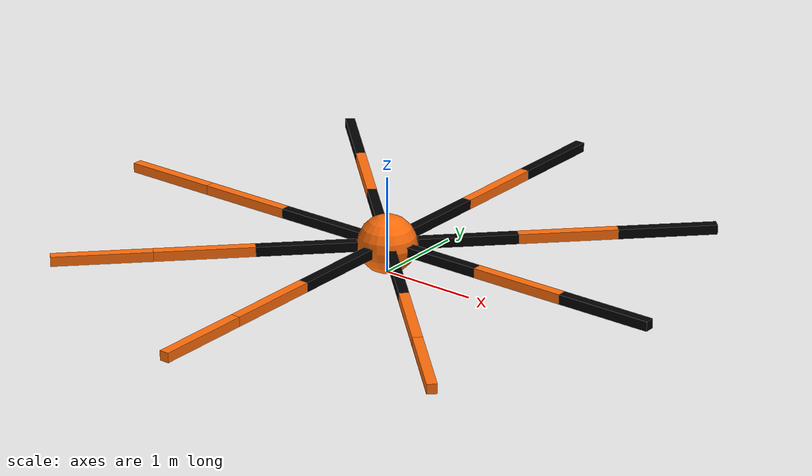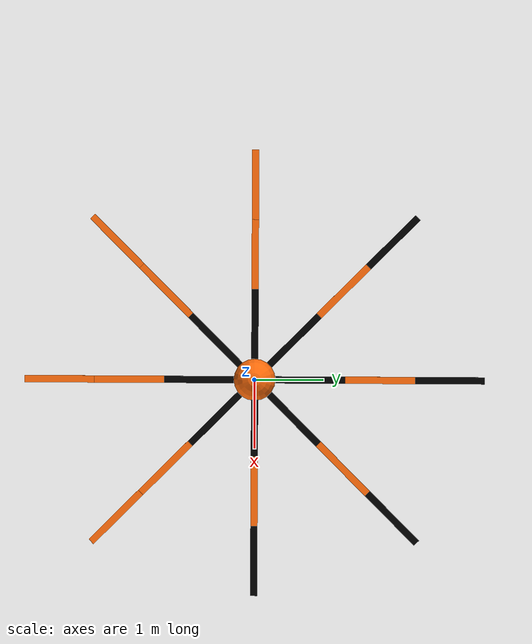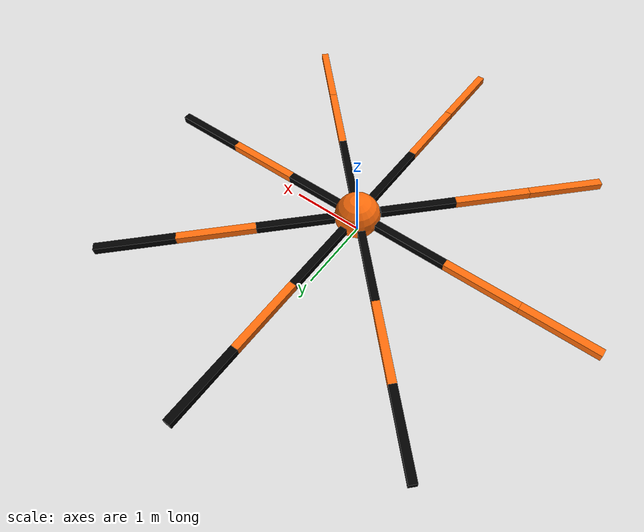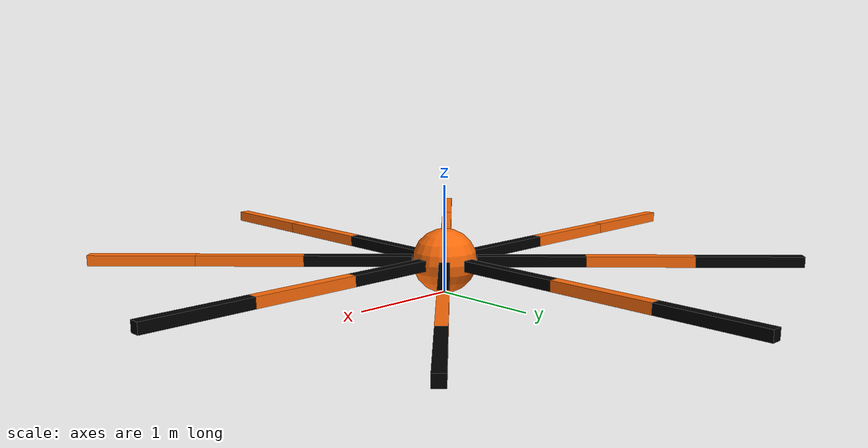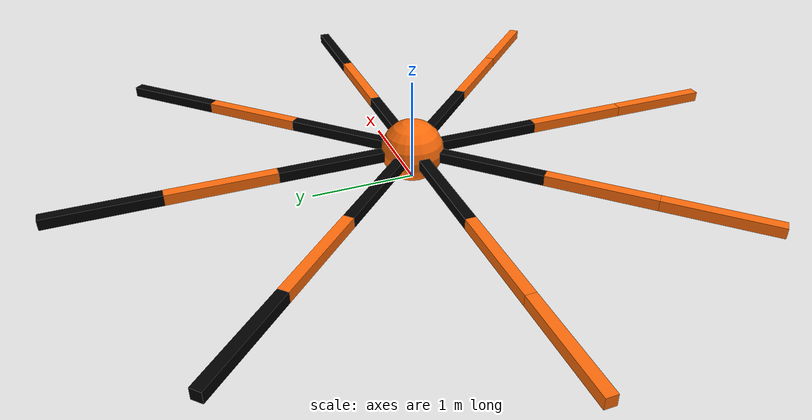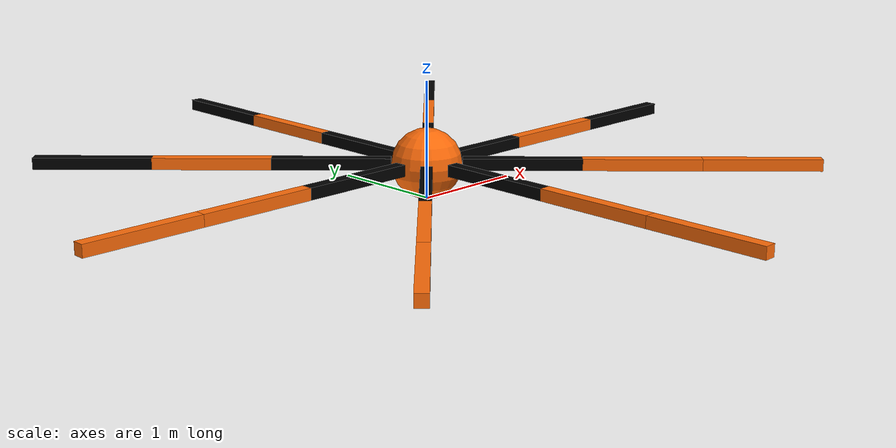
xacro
<?xml version="1.0"?>
<!-- Revolute-Revolute Manipulator -->
<robot name="spider_bot" xmlns:xacro="http://www.ros.org/wiki/xacro">

  <!-- Constants for robot dimensions -->
  <xacro:property name="PI" value="3.1415926535897931"/>
  <xacro:property name="mass_body" value="3" /> <!-- arbitrary value for mass of body-->
  <xacro:property name="mass_links" value="0.2" /> <!-- arbitrary value for mass of links-->
  <xacro:property name="radius" value="0.3" /> <!-- arbitrary value for radius of body-->
  <xacro:property name="axel_offset" value="0.00" /> <!-- space between top of beam and each joint-->
  <xacro:property name="width" value="0.1" /> <!-- arbitrary value for width of each link-->
  <xacro:property name="length" value="1" /> <!-- arbitrary value for length of each link-->

  <!-- Import all Gazebo-customization elements, including Gazebo colors -->
  <!--xacro:include filename="$(find rrbot_description)/urdf/rrbot.gazebo" /-->
  <!-- Import Rviz colors -->
  <!--xacro:include filename="$(find rrbot_description)/urdf/materials.xacro" /-->
  <gazebo>
    <plugin name="gazebo_ros_control" filename="libgazebo_ros_control.so">
       <robotSimType>gazebo_ros_control/DefaultRobotHWSim</robotSimType>
    </plugin>
  </gazebo>

  <material name="black">
    <color rgba="0.0 0.0 0.0 1.0"/>
  </material>
  <material name="orange">
    <color rgba="${255/255} ${108/255} ${10/255} 1.0"/>
  </material>

  <gazebo reference="body">
    <material>Gazebo/Orange</material>
  </gazebo>
  <gazebo reference="phi_link">
    <material>Gazebo/Red</material>
  </gazebo>
  <gazebo reference="arm_1_link_1">
    <material>Gazebo/Black</material>
  </gazebo>
  <gazebo reference="arm_1_link_2">
    <material>Gazebo/Orange</material>
  </gazebo>
  <gazebo reference="arm_1_link_3">
    <material>Gazebo/Black</material>
  </gazebo>
  <gazebo reference="arm_2_link_1">
    <material>Gazebo/Black</material>
  </gazebo>
  <gazebo reference="arm_2_link_2">
    <material>Gazebo/Orange</material>
  </gazebo>
  <gazebo reference="arm_2_link_3">
    <material>Gazebo/Black</material>
  </gazebo>
  <gazebo reference="arm_3_link_1">
    <material>Gazebo/Black</material>
  </gazebo>
  <gazebo reference="arm_3_link_2">
    <material>Gazebo/Orange</material>
  </gazebo>
  <gazebo reference="arm_3_link_3">
    <material>Gazebo/Black</material>
  </gazebo>
  <gazebo reference="arm_4_link_1">
    <material>Gazebo/Black</material>
  </gazebo>
  <gazebo reference="arm_4_link_2">
    <material>Gazebo/Orange</material>
  </gazebo>
  <gazebo reference="arm_4_link_3">
    <material>Gazebo/Black</material>
  </gazebo>
  <gazebo reference="arm_5_link_1">
    <material>Gazebo/Black</material>
  </gazebo>
  <gazebo reference="arm_5_link_2">
    <material>Gazebo/Orange</material>
  </gazebo>
  <gazebo reference="arm_5_link_3">
    <material>Gazebo/Black</material>
  </gazebo>
  <gazebo reference="arm_6_link_1">
    <material>Gazebo/Black</material>
  </gazebo>
  <gazebo reference="arm_6_link_2">
    <material>Gazebo/Orange</material>
  </gazebo>
  <gazebo reference="arm_6_link_3">
    <material>Gazebo/Black</material>
  </gazebo>
  <gazebo reference="arm_7_link_1">
    <material>Gazebo/Black</material>
  </gazebo>
  <gazebo reference="arm_7_link_2">
    <material>Gazebo/Orange</material>
  </gazebo>
  <gazebo reference="arm_7_link_3">
    <material>Gazebo/Black</material>
  </gazebo>
  <gazebo reference="arm_8_link_1">
    <material>Gazebo/Black</material>
  </gazebo>
  <gazebo reference="arm_8_link_2">
    <material>Gazebo/Orange</material>
  </gazebo>
  <gazebo reference="arm_8_link_3">
    <material>Gazebo/Black</material>
  </gazebo>

  <!-- World to body joint -->

  <!-- Body Link -->
  <link name="dummy">
   </link>
  <link name="body">

    <collision>
      <origin xyz="0 0 0" rpy="0 0 0"/>
      <geometry>
	<sphere radius = "${radius}"/>
      </geometry>
    </collision>

    <visual>
      <origin xyz="0 0 0" rpy="0 0 0"/>
      <geometry>
	<sphere radius = "${radius}"/>
      </geometry>
      <material name="orange"/>
    </visual>

    <inertial>
      <origin xyz="0 0 0" rpy="0 0 0"/>
      <mass value="${mass_body}"/>
      <inertia
	  ixx="${((2/5)*mass_body)*(radius*radius)}" ixy="0.0" ixz="0.0"
	  iyy="${((2/5)*mass_body)*(radius*radius)}" iyz="0.0"
	  izz="${((2/5)*mass_body)*(radius*radius)}"/>
    </inertial>
  </link>
  <joint name="dummy_joint" type="fixed">
     <parent link="dummy"/>
     <child link="body"/>
     <origin xyz="0 0 ${radius}" rpy="0 0 0"/>
  </joint>

  <joint name="joint1" type="continuous">
    <parent link="body"/>
    <child link="arm_1_link_1"/>
    <origin xyz="${width} 0 0" rpy="0 0 0"/>
    <axis xyz="0 1 0"/>
    <dynamics damping="0.7"/>
  </joint>

  <!-- Arm 1 Link 1 -->
  <link name="arm_1_link_1">
    <collision>
      <origin xyz="${length/2 - axel_offset} 0 0" rpy="0 0 0"/>
      <geometry>
	<box size="${length} ${width} ${width}"/>
      </geometry>
    </collision>

    <visual>
      <origin xyz="${length/2 - axel_offset} 0 0" rpy="0 0 0"/>
      <geometry>
	<box size="${length} ${width} ${width}"/>
      </geometry>
      <material name="black"/>
    </visual>

    <inertial>
      <origin xyz="${length/2 - axel_offset} 0 0" rpy="0 0 0"/>
      <mass value="${mass_links}"/>
      <inertia
	  ixx="${mass_links / 12.0 * (width*width + width*width)}" ixy="0.0" ixz="0.0"
	  iyy="${mass_links / 12.0 * (length*length + width*width)}" iyz="0.0"
	  izz="${mass_links / 12.0 * (width*width + length*length)}"/>
    </inertial>
  </link>

  <joint name="joint2" type="continuous">
    <parent link="arm_1_link_1"/>
    <child link="arm_1_link_2"/>
    <origin xyz="${length-axel_offset*2} 0 0" rpy="0 0 0"/>
    <axis xyz="0 1 0"/>
    <dynamics damping="0.7"/>
  </joint>

  <!-- Arm 1 Link 2 -->
  <link name="arm_1_link_2">
    <collision>
      <origin xyz="${length/2 - axel_offset} 0 0" rpy="0 0 0"/>
      <geometry>
	<box size="${length} ${width} ${width}"/>
      </geometry>
    </collision>

    <visual>
      <origin xyz="${length/2 - axel_offset} 0 0" rpy="0 0 0"/>
      <geometry>
	<box size="${length} ${width} ${width}"/>
      </geometry>
      <material name="orange"/>
    </visual>

    <inertial>
      <origin xyz="${length/2 - axel_offset} 0 0" rpy="0 0 0"/>
      <mass value="${mass_links}"/>
      <inertia
	  ixx="${mass_links / 12.0 * (width*width + width*width)}" ixy="0.0" ixz="0.0"
	  iyy="${mass_links / 12.0 * (length*length + width*width)}" iyz="0.0"
	  izz="${mass_links / 12.0 * (width*width + length*length)}"/>
    </inertial>
  </link>

  <joint name="joint3" type="continuous">
    <parent link="arm_1_link_2"/>
    <child link="arm_1_link_3"/>
    <origin xyz="${length-axel_offset*2} 0 0" rpy="0 0 0"/>
    <axis xyz="0 1 0"/>
    <dynamics damping="0.7"/>
  </joint>

  <!-- Arm 1 Link 3 -->
  <link name="arm_1_link_3">
    <collision>
      <origin xyz="${length/2 - axel_offset} 0 0" rpy="0 0 0"/>
      <geometry>
	<box size="${length} ${width} ${width}"/>
      </geometry>
    </collision>

    <visual>
      <origin xyz="${length/2 - axel_offset} 0 0" rpy="0 0 0"/>
      <geometry>
	<box size="${length} ${width} ${width}"/>
      </geometry>
      <material name="black"/>
    </visual>

    <inertial>
      <origin xyz="${length/2 - axel_offset} 0 0" rpy="0 0 0"/>
      <mass value="${mass_links}"/>
      <inertia
	  ixx="${mass_links / 12.0 * (width*width + width*width)}" ixy="0.0" ixz="0.0"
	  iyy="${mass_links / 12.0 * (length*length + width*width)}" iyz="0.0"
	  izz="${mass_links / 12.0 * (width*width + length*length)}"/>
    </inertial>
  </link>

  <joint name="joint4" type="continuous">
    <parent link="body"/>
    <child link="arm_2_link_1"/>
    <origin xyz="${(radius-axel_offset)*0.7071} ${(radius-axel_offset)*0.7071} 0" rpy="0 0 ${PI/4}"/>
    <axis xyz="0 1 0"/>
    <dynamics damping="0.7"/>
  </joint>

  <!-- Arm 2 Link 1 -->
  <link name="arm_2_link_1">
    <collision>
      <origin xyz="${length/2 - axel_offset} 0 0" rpy="0 0 0"/>
      <geometry>
	<box size="${length} ${width} ${width}"/>
      </geometry>
    </collision>

    <visual>
      <origin xyz="${length/2 - axel_offset} 0 0" rpy="0 0 0"/>
      <geometry>
	<box size="${length} ${width} ${width}"/>
      </geometry>
      <material name="black"/>
    </visual>

    <inertial>
      <origin xyz="${length/2 - axel_offset} 0 0" rpy="0 0 0"/>
      <mass value="${mass_links}"/>
      <inertia
	  ixx="${mass_links / 12.0 * (width*width + width*width)}" ixy="0.0" ixz="0.0"
	  iyy="${mass_links / 12.0 * (length*length + width*width)}" iyz="0.0"
	  izz="${mass_links / 12.0 * (width*width + length*length)}"/>
    </inertial>
  </link>

  <joint name="joint5" type="continuous">
    <parent link="arm_2_link_1"/>
    <child link="arm_2_link_2"/>
    <origin xyz="${length-axel_offset*2} 0 0" rpy="0 0 0"/>
    <axis xyz="0 1 0"/>
    <dynamics damping="0.7"/>
  </joint>

  <!-- Arm 2 Link 2 -->
  <link name="arm_2_link_2">
    <collision>
      <origin xyz="${length/2 - axel_offset} 0 0" rpy="0 0 0"/>
      <geometry>
	<box size="${length} ${width} ${width}"/>
      </geometry>
    </collision>

    <visual>
      <origin xyz="${length/2 - axel_offset} 0 0" rpy="0 0 0"/>
      <geometry>
	<box size="${length} ${width} ${width}"/>
      </geometry>
      <material name="orange"/>
    </visual>

    <inertial>
      <origin xyz="${length/2 - axel_offset} 0 0" rpy="0 0 0"/>
      <mass value="${mass_links}"/>
      <inertia
	  ixx="${mass_links / 12.0 * (width*width + width*width)}" ixy="0.0" ixz="0.0"
	  iyy="${mass_links / 12.0 * (length*length + width*width)}" iyz="0.0"
	  izz="${mass_links / 12.0 * (width*width + length*length)}"/>
    </inertial>
  </link>

  <joint name="joint6" type="continuous">
    <parent link="arm_2_link_2"/>
    <child link="arm_2_link_3"/>
    <origin xyz="${length-axel_offset*2} 0 0" rpy="0 0 0"/>
    <axis xyz="0 1 0"/>
    <dynamics damping="0.7"/>
  </joint>

  <!-- Arm 2 Link 3 -->
  <link name="arm_2_link_3">
    <collision>
      <origin xyz="${length/2 - axel_offset} 0 0" rpy="0 0 0"/>
      <geometry>
	<box size="${length} ${width} ${width}"/>
      </geometry>
    </collision>

    <visual>
      <origin xyz="${length/2 - axel_offset} 0 0" rpy="0 0 0"/>
      <geometry>
	<box size="${length} ${width} ${width}"/>
      </geometry>
      <material name="black"/>
    </visual>

    <inertial>
      <origin xyz="${length/2 - axel_offset} 0 0" rpy="0 0 0"/>
      <mass value="${mass_links}"/>
      <inertia
	  ixx="${mass_links / 12.0 * (width*width + width*width)}" ixy="0.0" ixz="0.0"
	  iyy="${mass_links / 12.0 * (length*length + width*width)}" iyz="0.0"
	  izz="${mass_links / 12.0 * (width*width + length*length)}"/>
    </inertial>
  </link>

  <joint name="joint7" type="continuous">
    <parent link="body"/>
    <child link="arm_3_link_1"/>
    <origin xyz="0 ${radius-axel_offset} 0" rpy="0 0 ${PI/2}"/>
    <axis xyz="0 1 0"/>
    <dynamics damping="0.7"/>
  </joint>

  <!-- Arm 3 Link 1 -->
  <link name="arm_3_link_1">
    <collision>
      <origin xyz="${length/2 - axel_offset} 0 0" rpy="0 0 0"/>
      <geometry>
	<box size="${length} ${width} ${width}"/>
      </geometry>
    </collision>

    <visual>
      <origin xyz="${length/2 - axel_offset} 0 0" rpy="0 0 0"/>
      <geometry>
	<box size="${length} ${width} ${width}"/>
      </geometry>
      <material name="black"/>
    </visual>

    <inertial>
      <origin xyz="${length/2 - axel_offset} 0 0" rpy="0 0 0"/>
      <mass value="${mass_links}"/>
      <inertia
	  ixx="${mass_links / 12.0 * (width*width + width*width)}" ixy="0.0" ixz="0.0"
	  iyy="${mass_links / 12.0 * (length*length + width*width)}" iyz="0.0"
	  izz="${mass_links / 12.0 * (width*width + length*length)}"/>
    </inertial>
  </link>

  <joint name="joint8" type="continuous">
    <parent link="arm_3_link_1"/>
    <child link="arm_3_link_2"/>
    <origin xyz="${length-axel_offset*2} 0 0" rpy="0 0 0"/>
    <axis xyz="0 1 0"/>
    <dynamics damping="0.7"/>
  </joint>

  <!-- Arm 3 Link 2 -->
  <link name="arm_3_link_2">
    <collision>
      <origin xyz="${length/2 - axel_offset} 0 0" rpy="0 0 0"/>
      <geometry>
	<box size="${length} ${width} ${width}"/>
      </geometry>
    </collision>

    <visual>
      <origin xyz="${length/2 - axel_offset} 0 0" rpy="0 0 0"/>
      <geometry>
	<box size="${length} ${width} ${width}"/>
      </geometry>
      <material name="orange"/>
    </visual>

    <inertial>
      <origin xyz="${length/2 - axel_offset} 0 0" rpy="0 0 0"/>
      <mass value="${mass_links}"/>
      <inertia
	  ixx="${mass_links / 12.0 * (width*width + width*width)}" ixy="0.0" ixz="0.0"
	  iyy="${mass_links / 12.0 * (length*length + width*width)}" iyz="0.0"
	  izz="${mass_links / 12.0 * (width*width + length*length)}"/>
    </inertial>
  </link>

  <joint name="joint9" type="continuous">
    <parent link="arm_3_link_2"/>
    <child link="arm_3_link_3"/>
    <origin xyz="${length - axel_offset*2} 0 0" rpy="0 0 0"/>
    <axis xyz="0 1 0"/>
    <dynamics damping="0.7"/>
  </joint>

  <!-- Arm 3 Link 3 -->
  <link name="arm_3_link_3">
    <collision>
      <origin xyz="${length/2 - axel_offset} 0 0" rpy="0 0 0"/>
      <geometry>
	<box size="${length} ${width} ${width}"/>
      </geometry>
    </collision>

    <visual>
      <origin xyz="${length/2 - axel_offset} 0 0" rpy="0 0 0"/>
      <geometry>
	<box size="${length} ${width} ${width}"/>
      </geometry>
      <material name="black"/>
    </visual>

    <inertial>
      <origin xyz="${length/2 - axel_offset} 0 0" rpy="0 0 0"/>
      <mass value="${mass_links}"/>
      <inertia
	  ixx="${mass_links / 12.0 * (width*width + width*width)}" ixy="0.0" ixz="0.0"
	  iyy="${mass_links / 12.0 * (length*length + width*width)}" iyz="0.0"
	  izz="${mass_links / 12.0 * (width*width + length*length)}"/>
    </inertial>
  </link>

  <joint name="joint10" type="continuous">
    <parent link="body"/>
    <child link="arm_4_link_1"/>
    <origin xyz="-${(radius-axel_offset)*0.7071} ${(radius-axel_offset)*0.7071} 0" rpy="0 0 ${3*PI/4}"/>
    <axis xyz="0 1 0"/>
    <dynamics damping="0.7"/>
  </joint>

  <!-- Arm 4 Link 1 -->
  <link name="arm_4_link_1">
    <collision>
      <origin xyz="${length/2 - axel_offset} 0 0" rpy="0 0 0"/>
      <geometry>
	<box size="${length} ${width} ${width}"/>
      </geometry>
    </collision>

    <visual>
      <origin xyz="${length/2 - axel_offset} 0 0" rpy="0 0 0"/>
      <geometry>
	<box size="${length} ${width} ${width}"/>
      </geometry>
      <material name="black"/>
    </visual>

    <inertial>
      <origin xyz="${length/2 - axel_offset} 0 0" rpy="0 0 0"/>
      <mass value="${mass_links}"/>
      <inertia
	  ixx="${mass_links / 12.0 * (width*width + width*width)}" ixy="0.0" ixz="0.0"
	  iyy="${mass_links / 12.0 * (length*length + width*width)}" iyz="0.0"
	  izz="${mass_links / 12.0 * (width*width + length*length)}"/>
    </inertial>
  </link>

  <joint name="joint11" type="continuous">
    <parent link="arm_4_link_1"/>
    <child link="arm_4_link_2"/>
    <origin xyz="${length-axel_offset*2} 0 0" rpy="0 0 0"/>
    <axis xyz="0 1 0"/>
    <dynamics damping="0.7"/>
  </joint>

  <!-- Arm 4 Link 2 -->
  <link name="arm_4_link_2">
    <collision>
      <origin xyz="${length/2 - axel_offset} 0 0" rpy="0 0 0"/>
      <geometry>
	<box size="${length} ${width} ${width}"/>
      </geometry>
    </collision>

    <visual>
      <origin xyz="${length/2 - axel_offset} 0 0" rpy="0 0 0"/>
      <geometry>
	<box size="${length} ${width} ${width}"/>
      </geometry>
      <material name="orange"/>
    </visual>

    <inertial>
      <origin xyz="${length/2 - axel_offset} 0 0" rpy="0 0 0"/>
      <mass value="${mass_links}"/>
      <inertia
	  ixx="${mass_links / 12.0 * (width*width + width*width)}" ixy="0.0" ixz="0.0"
	  iyy="${mass_links / 12.0 * (length*length + width*width)}" iyz="0.0"
	  izz="${mass_links / 12.0 * (width*width + length*length)}"/>
    </inertial>
  </link>

  <joint name="joint12" type="continuous">
    <parent link="arm_4_link_2"/>
    <child link="arm_4_link_3"/>
    <origin xyz="${length - axel_offset*2} 0 0" rpy="0 0 0"/>
    <axis xyz="0 1 0"/>
    <dynamics damping="0.7"/>
  </joint>

  <!-- Arm 4 Link 3 -->
  <link name="arm_4_link_3">
    <collision>
      <origin xyz="${length/2 - axel_offset} 0 0" rpy="0 0 0"/>
      <geometry>
	<box size="${length} ${width} ${width}"/>
      </geometry>
    </collision>

    <visual>
      <origin xyz="${length/2 - axel_offset} 0 0" rpy="0 0 0"/>
      <geometry>
	<box size="${length} ${width} ${width}"/>
      </geometry>
      <material name="black"/>
    </visual>

    <inertial>
      <origin xyz="${length/2 - axel_offset} 0 0" rpy="0 0 0"/>
      <mass value="${mass_links}"/>
      <inertia
	  ixx="${mass_links / 12.0 * (width*width + width*width)}" ixy="0.0" ixz="0.0"
	  iyy="${mass_links / 12.0 * (length*length + width*width)}" iyz="0.0"
	  izz="${mass_links / 12.0 * (width*width + length*length)}"/>
    </inertial>
  </link>

  <joint name="joint13" type="continuous">
    <parent link="body"/>
    <child link="arm_5_link_1"/>
    <origin xyz="-${radius-axel_offset} 0 0" rpy="0 0 ${PI}"/>
    <axis xyz="0 1 0"/>
    <dynamics damping="0.7"/>
  </joint>

  <!-- Arm 5 Link 1 -->
  <link name="arm_5_link_1">
    <collision>
      <origin xyz="${length/2 - axel_offset} 0 0" rpy="0 0 0"/>
      <geometry>
	<box size="${length} ${width} ${width}"/>
      </geometry>
    </collision>

    <visual>
      <origin xyz="${length/2 - axel_offset} 0 0" rpy="0 0 0"/>
      <geometry>
	<box size="${length} ${width} ${width}"/>
      </geometry>
      <material name="black"/>
    </visual>

    <inertial>
      <origin xyz="${length/2 - axel_offset} 0 0" rpy="0 0 0"/>
      <mass value="${mass_links}"/>
      <inertia
	  ixx="${mass_links / 12.0 * (width*width + width*width)}" ixy="0.0" ixz="0.0"
	  iyy="${mass_links / 12.0 * (length*length + width*width)}" iyz="0.0"
	  izz="${mass_links / 12.0 * (width*width + length*length)}"/>
    </inertial>
  </link>

  <joint name="joint14" type="continuous">
    <parent link="arm_5_link_1"/>
    <child link="arm_5_link_2"/>
    <origin xyz="${length-axel_offset*2} 0 0" rpy="0 0 0"/>
    <axis xyz="0 1 0"/>
    <dynamics damping="0.7"/>
  </joint>

  <!-- Arm 5 Link 2 -->
  <link name="arm_5_link_2">
    <collision>
      <origin xyz="${length/2 - axel_offset} 0 0" rpy="0 0 0"/>
      <geometry>
	<box size="${length} ${width} ${width}"/>
      </geometry>
    </collision>

    <visual>
      <origin xyz="${length/2 - axel_offset} 0 0" rpy="0 0 0"/>
      <geometry>
	<box size="${length} ${width} ${width}"/>
      </geometry>
      <material name="orange"/>
    </visual>

    <inertial>
      <origin xyz="${length/2 - axel_offset} 0 0" rpy="0 0 0"/>
      <mass value="${mass_links}"/>
      <inertia
	  ixx="${mass_links / 12.0 * (width*width + width*width)}" ixy="0.0" ixz="0.0"
	  iyy="${mass_links / 12.0 * (length*length + width*width)}" iyz="0.0"
	  izz="${mass_links / 12.0 * (width*width + length*length)}"/>
    </inertial>
  </link>

  <joint name="joint15" type="continuous">
    <parent link="arm_5_link_2"/>
    <child link="arm_5_link_3"/>
    <origin xyz="${length-axel_offset*2} 0 0" rpy="0 0 0"/>
    <axis xyz="0 1 0"/>
    <dynamics damping="0.7"/>
  </joint>

  <!-- Arm 5 Link 3 -->
  <link name="arm_5_link_3">
    <collision>
      <origin xyz="${length/2 - axel_offset} 0 0" rpy="0 0 0"/>
      <geometry>
	<box size="${length} ${width} ${width}"/>
      </geometry>
    </collision>

    <visual>
      <origin xyz="${length/2 - axel_offset} 0 0" rpy="0 0 0"/>
      <geometry>
	<box size="${length} ${width} ${width}"/>
      </geometry>
      <material name="orange"/>
    </visual>

    <inertial>
      <origin xyz="${length/2 - axel_offset} 0 0" rpy="0 0 0"/>
      <mass value="${mass_links}"/>
      <inertia
	  ixx="${mass_links / 12.0 * (width*width + width*width)}" ixy="0.0" ixz="0.0"
	  iyy="${mass_links / 12.0 * (length*length + width*width)}" iyz="0.0"
	  izz="${mass_links / 12.0 * (width*width + length*length)}"/>
    </inertial>
  </link>

  <joint name="joint16" type="continuous">
    <parent link="body"/>
    <child link="arm_6_link_1"/>
    <origin xyz="-${(radius-axel_offset)*0.7071} -${(radius-axel_offset)*0.7071}  0" rpy="0 0 ${5*PI/4}"/>
    <axis xyz="0 1 0"/>
    <dynamics damping="0.7"/>
  </joint>

  <!-- Arm 6 Link 1 -->
  <link name="arm_6_link_1">
    <collision>
      <origin xyz="${length/2 - axel_offset} 0 0" rpy="0 0 0"/>
      <geometry>
	<box size="${length} ${width} ${width}"/>
      </geometry>
    </collision>

    <visual>
      <origin xyz="${length/2 - axel_offset} 0 0" rpy="0 0 0"/>
      <geometry>
	<box size="${length} ${width} ${width}"/>
      </geometry>
      <material name="black"/>
    </visual>

    <inertial>
      <origin xyz="${length/2 - axel_offset} 0 0" rpy="0 0 0"/>
      <mass value="${mass_links}"/>
      <inertia
	  ixx="${mass_links / 12.0 * (width*width + width*width)}" ixy="0.0" ixz="0.0"
	  iyy="${mass_links / 12.0 * (length*length + width*width)}" iyz="0.0"
	  izz="${mass_links / 12.0 * (width*width + length*length)}"/>
    </inertial>
  </link>

  <joint name="joint17" type="continuous">
    <parent link="arm_6_link_1"/>
    <child link="arm_6_link_2"/>
    <origin xyz="${length-axel_offset*2} 0 0" rpy="0 0 0"/>
    <axis xyz="0 1 0"/>
    <dynamics damping="0.7"/>
  </joint>

  <!-- Arm 6 Link 2 -->
  <link name="arm_6_link_2">
    <collision>
      <origin xyz="${length/2 - axel_offset} 0 0" rpy="0 0 0"/>
      <geometry>
	<box size="${length} ${width} ${width}"/>
      </geometry>
    </collision>

    <visual>
      <origin xyz="${length/2 - axel_offset} 0 0" rpy="0 0 0"/>
      <geometry>
	<box size="${length} ${width} ${width}"/>
      </geometry>
      <material name="orange"/>
    </visual>

    <inertial>
      <origin xyz="${length/2 - axel_offset} 0 0" rpy="0 0 0"/>
      <mass value="${mass_links}"/>
      <inertia
	  ixx="${mass_links / 12.0 * (width*width + width*width)}" ixy="0.0" ixz="0.0"
	  iyy="${mass_links / 12.0 * (length*length + width*width)}" iyz="0.0"
	  izz="${mass_links / 12.0 * (width*width + length*length)}"/>
    </inertial>
  </link>

  <joint name="joint18" type="continuous">
    <parent link="arm_6_link_2"/>
    <child link="arm_6_link_3"/>
    <origin xyz="${length-axel_offset*2} 0 0" rpy="0 0 0"/>
    <axis xyz="0 1 0"/>
    <dynamics damping="0.7"/>
  </joint>

  <!-- Arm 6 Link 3 -->
  <link name="arm_6_link_3">
    <collision>
      <origin xyz="${length/2 - axel_offset} 0 0" rpy="0 0 0"/>
      <geometry>
	<box size="${length} ${width} ${width}"/>
      </geometry>
    </collision>

    <visual>
      <origin xyz="${length/2 - axel_offset} 0 0" rpy="0 0 0"/>
      <geometry>
	<box size="${length} ${width} ${width}"/>
      </geometry>
      <material name="orange"/>
    </visual>

    <inertial>
      <origin xyz="${length/2 - axel_offset} 0 0" rpy="0 0 0"/>
      <mass value="${mass_links}"/>
      <inertia
	  ixx="${mass_links / 12.0 * (width*width + width*width)}" ixy="0.0" ixz="0.0"
	  iyy="${mass_links / 12.0 * (length*length + width*width)}" iyz="0.0"
	  izz="${mass_links / 12.0 * (width*width + length*length)}"/>
    </inertial>
  </link>

  <joint name="joint19" type="continuous">
    <parent link="body"/>
    <child link="arm_7_link_1"/>
    <origin xyz="0 -${radius-axel_offset} 0" rpy="0 0 ${3*PI/2}"/>
    <axis xyz="0 1 0"/>
    <dynamics damping="0.7"/>
  </joint>

  <!-- Arm 7 Link 1 -->
  <link name="arm_7_link_1">
    <collision>
      <origin xyz="${length/2 - axel_offset} 0 0" rpy="0 0 0"/>
      <geometry>
	<box size="${length} ${width} ${width}"/>
      </geometry>
    </collision>

    <visual>
      <origin xyz="${length/2 - axel_offset} 0 0" rpy="0 0 0"/>
      <geometry>
	<box size="${length} ${width} ${width}"/>
      </geometry>
      <material name="black"/>
    </visual>

    <inertial>
      <origin xyz="${length/2 - axel_offset} 0 0" rpy="0 0 0"/>
      <mass value="${mass_links}"/>
      <inertia
	  ixx="${mass_links / 12.0 * (width*width + width*width)}" ixy="0.0" ixz="0.0"
	  iyy="${mass_links / 12.0 * (length*length + width*width)}" iyz="0.0"
	  izz="${mass_links / 12.0 * (width*width + length*length)}"/>
    </inertial>
  </link>

  <joint name="joint20" type="continuous">
    <parent link="arm_7_link_1"/>
    <child link="arm_7_link_2"/>
    <origin xyz="${length-axel_offset*2} 0 0" rpy="0 0 0"/>
    <axis xyz="0 1 0"/>
    <dynamics damping="0.7"/>
  </joint>

  <!-- Arm 7 Link 2 -->
  <link name="arm_7_link_2">
    <collision>
      <origin xyz="${length/2 - axel_offset} 0 0" rpy="0 0 0"/>
      <geometry>
	<box size="${length} ${width} ${width}"/>
      </geometry>
    </collision>

    <visual>
      <origin xyz="${length/2 - axel_offset} 0 0" rpy="0 0 0"/>
      <geometry>
	<box size="${length} ${width} ${width}"/>
      </geometry>
      <material name="orange"/>
    </visual>

    <inertial>
      <origin xyz="${length/2 - axel_offset} 0 0" rpy="0 0 0"/>
      <mass value="${mass_links}"/>
      <inertia
	  ixx="${mass_links / 12.0 * (width*width + width*width)}" ixy="0.0" ixz="0.0"
	  iyy="${mass_links / 12.0 * (length*length + width*width)}" iyz="0.0"
	  izz="${mass_links / 12.0 * (width*width + length*length)}"/>
    </inertial>
  </link>

  <joint name="joint21" type="continuous">
    <parent link="arm_7_link_2"/>
    <child link="arm_7_link_3"/>
    <origin xyz="${length-axel_offset*2} 0 0" rpy="0 0 0"/>
    <axis xyz="0 1 0"/>
    <dynamics damping="0.7"/>
  </joint>

  <!-- Arm 7 Link 3 -->
  <link name="arm_7_link_3">
    <collision>
      <origin xyz="${length/2 - axel_offset} 0 0" rpy="0 0 0"/>
      <geometry>
	<box size="${length} ${width} ${width}"/>
      </geometry>
    </collision>

    <visual>
      <origin xyz="${length/2 - axel_offset} 0 0" rpy="0 0 0"/>
      <geometry>
	<box size="${length} ${width} ${width}"/>
      </geometry>
      <material name="orange"/>
    </visual>

    <inertial>
      <origin xyz="${length/2 - axel_offset} 0 0" rpy="0 0 0"/>
      <mass value="${mass_links}"/>
      <inertia
	  ixx="${mass_links / 12.0 * (width*width + width*width)}" ixy="0.0" ixz="0.0"
	  iyy="${mass_links / 12.0 * (length*length + width*width)}" iyz="0.0"
	  izz="${mass_links / 12.0 * (width*width + length*length)}"/>
    </inertial>
  </link>

  <joint name="joint22" type="continuous">
    <parent link="body"/>
    <child link="arm_8_link_1"/>
    <origin xyz="${(radius-axel_offset)*0.7071} -${(radius-axel_offset)*0.7071}  0" rpy="0 0 ${7*PI/4}"/>
    <axis xyz="0 1 0"/>
    <dynamics damping="0.7"/>
  </joint>

  <!-- Arm 8 Link 1 -->
  <link name="arm_8_link_1">
    <collision>
      <origin xyz="${length/2 - axel_offset} 0 0" rpy="0 0 0"/>
      <geometry>
	<box size="${length} ${width} ${width}"/>
      </geometry>
    </collision>

    <visual>
      <origin xyz="${length/2 - axel_offset} 0 0" rpy="0 0 0"/>
      <geometry>
	<box size="${length} ${width} ${width}"/>
      </geometry>
      <material name="black"/>
    </visual>

    <inertial>
      <origin xyz="${length/2 - axel_offset} 0 0" rpy="0 0 0"/>
      <mass value="${mass_links}"/>
      <inertia
	  ixx="${mass_links / 12.0 * (width*width + width*width)}" ixy="0.0" ixz="0.0"
	  iyy="${mass_links / 12.0 * (length*length + width*width)}" iyz="0.0"
	  izz="${mass_links / 12.0 * (width*width + length*length)}"/>
    </inertial>
  </link>

  <joint name="joint23" type="continuous">
    <parent link="arm_8_link_1"/>
    <child link="arm_8_link_2"/>
    <origin xyz="${length-axel_offset*2} 0 0" rpy="0 0 0"/>
    <axis xyz="0 1 0"/>
    <dynamics damping="0.7"/>
  </joint>

  <!-- Arm 8 Link 2 -->
  <link name="arm_8_link_2">
    <collision>
      <origin xyz="${length/2 - axel_offset} 0 0" rpy="0 0 0"/>
      <geometry>
	<box size="${length} ${width} ${width}"/>
      </geometry>
    </collision>

    <visual>
      <origin xyz="${length/2 - axel_offset} 0 0" rpy="0 0 0"/>
      <geometry>
	<box size="${length} ${width} ${width}"/>
      </geometry>
      <material name="orange"/>
    </visual>

    <inertial>
      <origin xyz="${length/2 - axel_offset} 0 0" rpy="0 0 0"/>
      <mass value="${mass_links}"/>
      <inertia
	  ixx="${mass_links / 12.0 * (width*width + width*width)}" ixy="0.0" ixz="0.0"
	  iyy="${mass_links / 12.0 * (length*length + width*width)}" iyz="0.0"
	  izz="${mass_links / 12.0 * (width*width + length*length)}"/>
    </inertial>
  </link>

  <joint name="joint24" type="continuous">
    <parent link="arm_8_link_2"/>
    <child link="arm_8_link_3"/>
    <origin xyz="${length-axel_offset*2} 0 0" rpy="0 0 0"/>
    <axis xyz="0 1 0"/>
    <dynamics damping="0.7"/>
  </joint>

  <!-- Arm 8 Link 3 -->
  <link name="arm_8_link_3">
    <collision>
      <origin xyz="${length/2 - axel_offset} 0 0" rpy="0 0 0"/>
      <geometry>
	<box size="${length} ${width} ${width}"/>
      </geometry>
    </collision>

    <visual>
      <origin xyz="${length/2 - axel_offset} 0 0" rpy="0 0 0"/>
      <geometry>
	<box size="${length} ${width} ${width}"/>
      </geometry>
      <material name="orange"/>
    </visual>

    <inertial>
      <origin xyz="${length/2 - axel_offset} 0 0" rpy="0 0 0"/>
      <mass value="${mass_links}"/>
      <inertia
	  ixx="${mass_links / 12.0 * (width*width + width*width)}" ixy="0.0" ixz="0.0"
	  iyy="${mass_links / 12.0 * (length*length + width*width)}" iyz="0.0"
	  izz="${mass_links / 12.0 * (width*width + length*length)}"/>
    </inertial>
  </link>

  <transmission name="tran1">
    <type>transmission_interface/SimpleTransmission</type>
    <joint name="joint1">
      <hardwareInterface>hardware_interface/EffortJointInterface</hardwareInterface>
    </joint>
    <actuator name="motor1">
      <hardwareInterface>hardware_interface/EffortJointInterface</hardwareInterface>
      <mechanicalReduction>1</mechanicalReduction>
    </actuator>
  </transmission>

  <transmission name="tran2">
    <type>transmission_interface/SimpleTransmission</type>
    <joint name="joint2">
      <hardwareInterface>hardware_interface/EffortJointInterface</hardwareInterface>
    </joint>
    <actuator name="motor2">
      <hardwareInterface>hardware_interface/EffortJointInterface</hardwareInterface>
      <mechanicalReduction>1</mechanicalReduction>
    </actuator>
  </transmission>

  <transmission name="tran3">
    <type>transmission_interface/SimpleTransmission</type>
    <joint name="joint3">
      <hardwareInterface>hardware_interface/EffortJointInterface</hardwareInterface>
    </joint>
    <actuator name="motor3">
      <hardwareInterface>hardware_interface/EffortJointInterface</hardwareInterface>
      <mechanicalReduction>1</mechanicalReduction>
    </actuator>
  </transmission>

  <transmission name="tran4">
    <type>transmission_interface/SimpleTransmission</type>
    <joint name="joint4">
      <hardwareInterface>hardware_interface/EffortJointInterface</hardwareInterface>
    </joint>
    <actuator name="motor4">
      <hardwareInterface>hardware_interface/EffortJointInterface</hardwareInterface>
      <mechanicalReduction>1</mechanicalReduction>
    </actuator>
  </transmission>

  <transmission name="tran5">
    <type>transmission_interface/SimpleTransmission</type>
    <joint name="joint5">
      <hardwareInterface>hardware_interface/EffortJointInterface</hardwareInterface>
    </joint>
    <actuator name="motor5">
      <hardwareInterface>hardware_interface/EffortJointInterface</hardwareInterface>
      <mechanicalReduction>1</mechanicalReduction>
    </actuator>
  </transmission>

  <transmission name="tran6">
    <type>transmission_interface/SimpleTransmission</type>
    <joint name="joint6">
      <hardwareInterface>hardware_interface/EffortJointInterface</hardwareInterface>
    </joint>
    <actuator name="motor6">
      <hardwareInterface>hardware_interface/EffortJointInterface</hardwareInterface>
      <mechanicalReduction>1</mechanicalReduction>
    </actuator>
  </transmission>

  <transmission name="tran7">
    <type>transmission_interface/SimpleTransmission</type>
    <joint name="joint7">
      <hardwareInterface>hardware_interface/EffortJointInterface</hardwareInterface>
    </joint>
    <actuator name="motor7">
      <hardwareInterface>hardware_interface/EffortJointInterface</hardwareInterface>
      <mechanicalReduction>1</mechanicalReduction>
    </actuator>
  </transmission>

  <transmission name="tran8">
    <type>transmission_interface/SimpleTransmission</type>
    <joint name="joint8">
      <hardwareInterface>hardware_interface/EffortJointInterface</hardwareInterface>
    </joint>
    <actuator name="motor8">
      <hardwareInterface>hardware_interface/EffortJointInterface</hardwareInterface>
      <mechanicalReduction>1</mechanicalReduction>
    </actuator>
  </transmission>

  <transmission name="tran9">
    <type>transmission_interface/SimpleTransmission</type>
    <joint name="joint9">
      <hardwareInterface>hardware_interface/EffortJointInterface</hardwareInterface>
    </joint>
    <actuator name="motor9">
      <hardwareInterface>hardware_interface/EffortJointInterface</hardwareInterface>
      <mechanicalReduction>1</mechanicalReduction>
    </actuator>
  </transmission>

  <transmission name="tran10">
    <type>transmission_interface/SimpleTransmission</type>
    <joint name="joint10">
      <hardwareInterface>hardware_interface/EffortJointInterface</hardwareInterface>
    </joint>
    <actuator name="motor10">
      <hardwareInterface>hardware_interface/EffortJointInterface</hardwareInterface>
      <mechanicalReduction>1</mechanicalReduction>
    </actuator>
  </transmission>

  <transmission name="tran11">
    <type>transmission_interface/SimpleTransmission</type>
    <joint name="joint11">
      <hardwareInterface>hardware_interface/EffortJointInterface</hardwareInterface>
    </joint>
    <actuator name="motor11">
      <hardwareInterface>hardware_interface/EffortJointInterface</hardwareInterface>
      <mechanicalReduction>1</mechanicalReduction>
    </actuator>
  </transmission>

  <transmission name="tran12">
    <type>transmission_interface/SimpleTransmission</type>
    <joint name="joint12">
      <hardwareInterface>hardware_interface/EffortJointInterface</hardwareInterface>
    </joint>
    <actuator name="motor12">
      <hardwareInterface>hardware_interface/EffortJointInterface</hardwareInterface>
      <mechanicalReduction>1</mechanicalReduction>
    </actuator>
  </transmission>

  <transmission name="tran13">
    <type>transmission_interface/SimpleTransmission</type>
    <joint name="joint13">
      <hardwareInterface>hardware_interface/EffortJointInterface</hardwareInterface>
    </joint>
    <actuator name="motor13">
      <hardwareInterface>hardware_interface/EffortJointInterface</hardwareInterface>
      <mechanicalReduction>1</mechanicalReduction>
    </actuator>
  </transmission>

  <transmission name="tran14">
    <type>transmission_interface/SimpleTransmission</type>
    <joint name="joint14">
      <hardwareInterface>hardware_interface/EffortJointInterface</hardwareInterface>
    </joint>
    <actuator name="motor14">
      <hardwareInterface>hardware_interface/EffortJointInterface</hardwareInterface>
      <mechanicalReduction>1</mechanicalReduction>
    </actuator>
  </transmission>

  <transmission name="tran15">
    <type>transmission_interface/SimpleTransmission</type>
    <joint name="joint15">
      <hardwareInterface>hardware_interface/EffortJointInterface</hardwareInterface>
    </joint>
    <actuator name="motor15">
      <hardwareInterface>hardware_interface/EffortJointInterface</hardwareInterface>
      <mechanicalReduction>1</mechanicalReduction>
    </actuator>
  </transmission>

  <transmission name="tran16">
    <type>transmission_interface/SimpleTransmission</type>
    <joint name="joint16">
      <hardwareInterface>hardware_interface/EffortJointInterface</hardwareInterface>
    </joint>
    <actuator name="motor16">
      <hardwareInterface>hardware_interface/EffortJointInterface</hardwareInterface>
      <mechanicalReduction>1</mechanicalReduction>
    </actuator>
  </transmission>

  <transmission name="tran17">
    <type>transmission_interface/SimpleTransmission</type>
    <joint name="joint17">
      <hardwareInterface>hardware_interface/EffortJointInterface</hardwareInterface>
    </joint>
    <actuator name="motor17">
      <hardwareInterface>hardware_interface/EffortJointInterface</hardwareInterface>
      <mechanicalReduction>1</mechanicalReduction>
    </actuator>
  </transmission>

  <transmission name="tran18">
    <type>transmission_interface/SimpleTransmission</type>
    <joint name="joint18">
      <hardwareInterface>hardware_interface/EffortJointInterface</hardwareInterface>
    </joint>
    <actuator name="motor18">
      <hardwareInterface>hardware_interface/EffortJointInterface</hardwareInterface>
      <mechanicalReduction>1</mechanicalReduction>
    </actuator>
  </transmission>

  <transmission name="tran19">
    <type>transmission_interface/SimpleTransmission</type>
    <joint name="joint19">
      <hardwareInterface>hardware_interface/EffortJointInterface</hardwareInterface>
    </joint>
    <actuator name="motor19">
      <hardwareInterface>hardware_interface/EffortJointInterface</hardwareInterface>
      <mechanicalReduction>1</mechanicalReduction>
    </actuator>
  </transmission>

  <transmission name="tran20">
    <type>transmission_interface/SimpleTransmission</type>
    <joint name="joint20">
      <hardwareInterface>hardware_interface/EffortJointInterface</hardwareInterface>
    </joint>
    <actuator name="motor20">
      <hardwareInterface>hardware_interface/EffortJointInterface</hardwareInterface>
      <mechanicalReduction>1</mechanicalReduction>
    </actuator>
  </transmission>

  <transmission name="tran21">
    <type>transmission_interface/SimpleTransmission</type>
    <joint name="joint21">
      <hardwareInterface>hardware_interface/EffortJointInterface</hardwareInterface>
    </joint>
    <actuator name="motor21">
      <hardwareInterface>hardware_interface/EffortJointInterface</hardwareInterface>
      <mechanicalReduction>1</mechanicalReduction>
    </actuator>
  </transmission>

  <transmission name="tran22">
    <type>transmission_interface/SimpleTransmission</type>
    <joint name="joint22">
      <hardwareInterface>hardware_interface/EffortJointInterface</hardwareInterface>
    </joint>
    <actuator name="motor22">
      <hardwareInterface>hardware_interface/EffortJointInterface</hardwareInterface>
      <mechanicalReduction>1</mechanicalReduction>
    </actuator>
  </transmission>

  <transmission name="tran23">
    <type>transmission_interface/SimpleTransmission</type>
    <joint name="joint23">
      <hardwareInterface>hardware_interface/EffortJointInterface</hardwareInterface>
    </joint>
    <actuator name="motor23">
      <hardwareInterface>hardware_interface/EffortJointInterface</hardwareInterface>
      <mechanicalReduction>1</mechanicalReduction>
    </actuator>
  </transmission>

  <transmission name="tran24">
    <type>transmission_interface/SimpleTransmission</type>
    <joint name="joint24">
      <hardwareInterface>hardware_interface/EffortJointInterface</hardwareInterface>
    </joint>
    <actuator name="motor24">
      <hardwareInterface>hardware_interface/EffortJointInterface</hardwareInterface>
      <mechanicalReduction>1</mechanicalReduction>
    </actuator>
  </transmission>

</robot>
